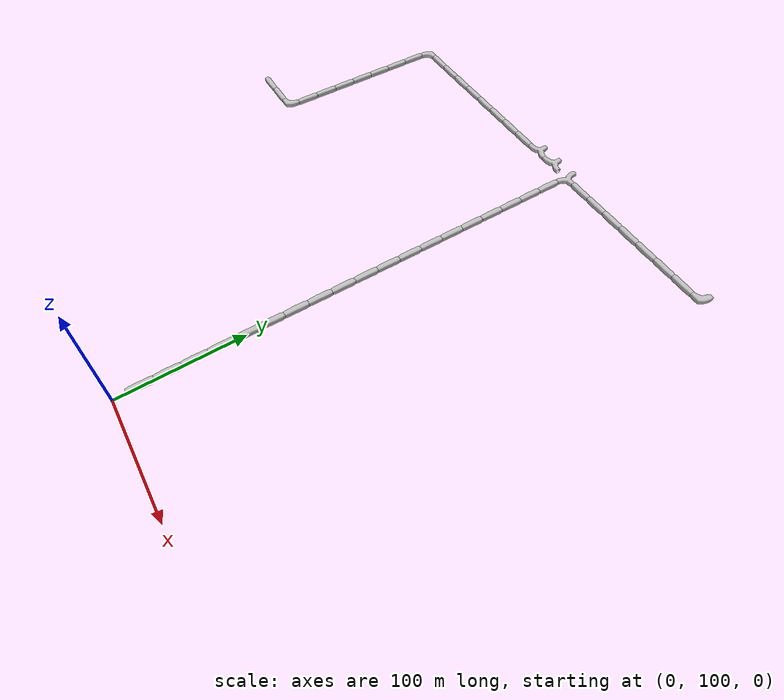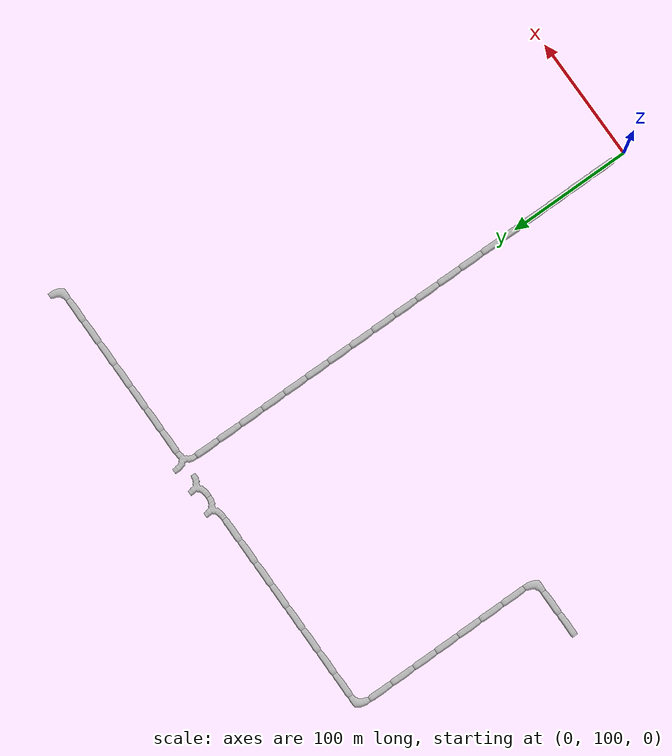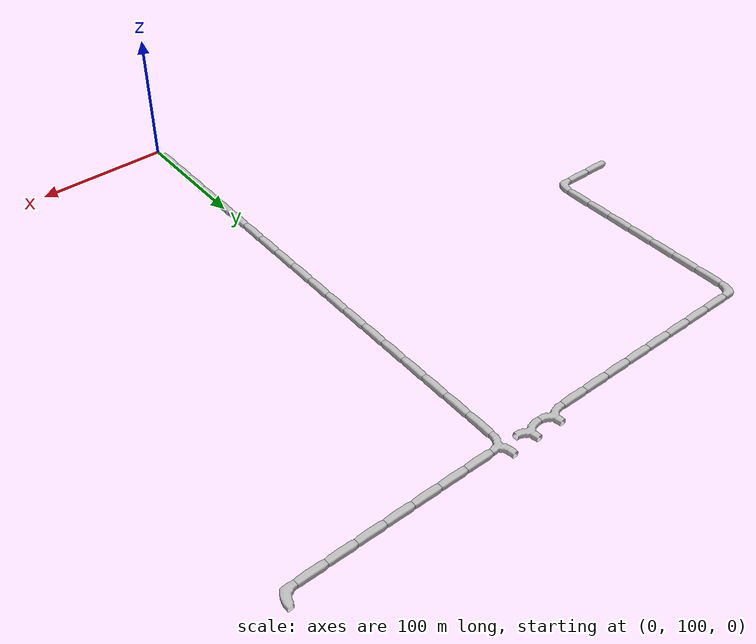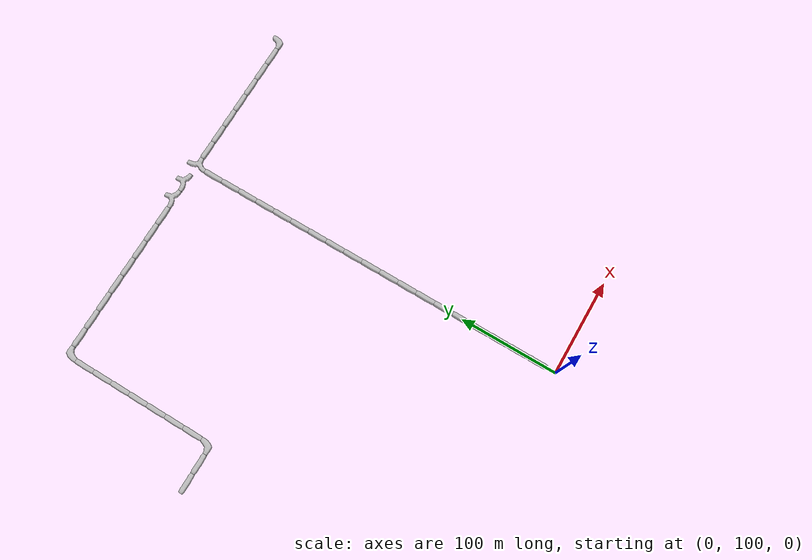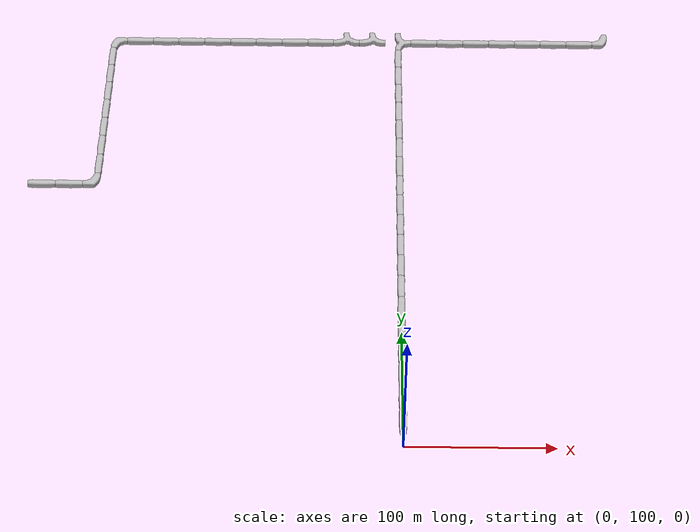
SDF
<sdf version="1.6">
 <world name="cave_4000_4">
  <include>
   <static>true</static>
   <name>cave_0_6</name>
   <pose>0 120 0 0 0 0.0</pose>
   <uri>model://cave_straight_20m</uri>
  </include>
  <include>
   <static>true</static>
   <name>cave_0_7</name>
   <pose>0 140 0 0 0 0.0</pose>
   <uri>model://cave_straight_20m</uri>
  </include>
  <include>
   <static>true</static>
   <name>cave_0_8</name>
   <pose>0 160 0 0 0 0.0</pose>
   <uri>model://cave_straight_20m</uri>
  </include>
  <include>
   <static>true</static>
   <name>cave_0_9</name>
   <pose>0 180 0 0 0 0.0</pose>
   <uri>model://cave_straight_20m</uri>
  </include>
  <include>
   <static>true</static>
   <name>cave_0_10</name>
   <pose>0 200 0 0 0 0.0</pose>
   <uri>model://cave_straight_20m</uri>
  </include>
  <include>
   <static>true</static>
   <name>cave_0_11</name>
   <pose>0 220 0 0 0 0.0</pose>
   <uri>model://cave_straight_20m</uri>
  </include>
  <include>
   <static>true</static>
   <name>cave_0_12</name>
   <pose>0 240 0 0 0 0.0</pose>
   <uri>model://cave_straight_20m</uri>
  </include>
  <include>
   <static>true</static>
   <name>cave_0_13</name>
   <pose>0 260 0 0 0 0.0</pose>
   <uri>model://cave_straight_20m</uri>
  </include>
  <include>
   <static>true</static>
   <name>cave_0_14</name>
   <pose>0 280 0 0 0 0.0</pose>
   <uri>model://cave_straight_20m</uri>
  </include>
  <include>
   <static>true</static>
   <name>cave_0_15</name>
   <pose>0 300 0 0 0 0.0</pose>
   <uri>model://cave_straight_20m</uri>
  </include>
  <include>
   <static>true</static>
   <name>cave_0_16</name>
   <pose>0 320 0 0 0 0.0</pose>
   <uri>model://cave_straight_20m</uri>
  </include>
  <include>
   <static>true</static>
   <name>cave_0_17</name>
   <pose>0 340 0 0 0 0.0</pose>
   <uri>model://cave_straight_20m</uri>
  </include>
  <include>
   <static>true</static>
   <name>cave_0_18</name>
   <pose>0 360 0 0 0 0.0</pose>
   <uri>model://cave_straight_20m</uri>
  </include>
  <include>
   <static>true</static>
   <name>cave_0_19</name>
   <pose>0 380 0 0 0 0.0</pose>
   <uri>model://cave_straight_20m</uri>
  </include>
  <include>
   <static>true</static>
   <name>cave_0_20</name>
   <pose>0 400 0 0 0 0.0</pose>
   <uri>model://cave_straight_20m</uri>
  </include>
  <include>
   <static>true</static>
   <name>cave_0_21</name>
   <pose>0 420 0 0 0 0.0</pose>
   <uri>model://cave_straight_20m</uri>
  </include>
  <include>
   <static>true</static>
   <name>cave_0_22</name>
   <pose>0 440 0 0 0 0.0</pose>
   <uri>model://cave_straight_20m</uri>
  </include>
  <include>
   <static>true</static>
   <name>cave_0_23</name>
   <pose>0 460 0 0 0 0.0</pose>
   <uri>model://cave_straight_20m</uri>
  </include>
  <include>
   <static>true</static>
   <name>cave_0_24</name>
   <pose>0 480 0 0 0 0.0</pose>
   <uri>model://cave_straight_20m</uri>
  </include>
  <include>
   <static>true</static>
   <name>cave_0_25</name>
   <pose>0 500 0 0 0 -1.5707963267948966</pose>
   <uri>model://cave_3way_20m</uri>
  </include>
  <include>
   <static>true</static>
   <name>cave_1_25</name>
   <pose>20 500 0 0 0 1.5707963267948966</pose>
   <uri>model://cave_straight_20m</uri>
  </include>
  <include>
   <static>true</static>
   <name>cave_2_25</name>
   <pose>40 500 0 0 0 1.5707963267948966</pose>
   <uri>model://cave_straight_20m</uri>
  </include>
  <include>
   <static>true</static>
   <name>cave_3_25</name>
   <pose>60 500 0 0 0 1.5707963267948966</pose>
   <uri>model://cave_straight_20m</uri>
  </include>
  <include>
   <static>true</static>
   <name>cave_4_25</name>
   <pose>80 500 0 0 0 1.5707963267948966</pose>
   <uri>model://cave_straight_20m</uri>
  </include>
  <include>
   <static>true</static>
   <name>cave_5_25</name>
   <pose>100 500 0 0 0 1.5707963267948966</pose>
   <uri>model://cave_straight_20m</uri>
  </include>
  <include>
   <static>true</static>
   <name>cave_6_25</name>
   <pose>120 500 0 0 0 1.5707963267948966</pose>
   <uri>model://cave_straight_20m</uri>
  </include>
  <include>
   <static>true</static>
   <name>cave_7_25</name>
   <pose>140 500 0 0 0 1.5707963267948966</pose>
   <uri>model://cave_straight_20m</uri>
  </include>
  <include>
   <static>true</static>
   <name>cave_8_25</name>
   <pose>160 500 0 0 0 1.5707963267948966</pose>
   <uri>model://cave_L_20m</uri>
  </include>
  <include>
   <static>true</static>
   <name>cave_-1_25</name>
   <pose>-20 500 0 0 0 0.0</pose>
   <uri>model://cave_3way_20m</uri>
  </include>
  <include>
   <static>true</static>
   <name>cave_-2_25</name>
   <pose>-40 500 0 0 0 0.0</pose>
   <uri>model://cave_3way_20m</uri>
  </include>
  <include>
   <static>true</static>
   <name>cave_-3_25</name>
   <pose>-60 500 0 0 0 1.5707963267948966</pose>
   <uri>model://cave_straight_20m</uri>
  </include>
  <include>
   <static>true</static>
   <name>cave_-4_25</name>
   <pose>-80 500 0 0 0 1.5707963267948966</pose>
   <uri>model://cave_straight_20m</uri>
  </include>
  <include>
   <static>true</static>
   <name>cave_-5_25</name>
   <pose>-100 500 0 0 0 1.5707963267948966</pose>
   <uri>model://cave_straight_20m</uri>
  </include>
  <include>
   <static>true</static>
   <name>cave_-6_25</name>
   <pose>-120 500 0 0 0 1.5707963267948966</pose>
   <uri>model://cave_straight_20m</uri>
  </include>
  <include>
   <static>true</static>
   <name>cave_-7_25</name>
   <pose>-140 500 0 0 0 1.5707963267948966</pose>
   <uri>model://cave_straight_20m</uri>
  </include>
  <include>
   <static>true</static>
   <name>cave_-8_25</name>
   <pose>-160 500 0 0 0 1.5707963267948966</pose>
   <uri>model://cave_straight_20m</uri>
  </include>
  <include>
   <static>true</static>
   <name>cave_-9_25</name>
   <pose>-180 500 0 0 0 1.5707963267948966</pose>
   <uri>model://cave_straight_20m</uri>
  </include>
  <include>
   <static>true</static>
   <name>cave_-10_25</name>
   <pose>-200 500 0 0 0 1.5707963267948966</pose>
   <uri>model://cave_straight_20m</uri>
  </include>
  <include>
   <static>true</static>
   <name>cave_-11_25</name>
   <pose>-220 500 0 0 0 -1.5707963267948966</pose>
   <uri>model://cave_L_20m</uri>
  </include>
  <include>
   <static>true</static>
   <name>cave_-11_24</name>
   <pose>-220 480 0 0 0 0.0</pose>
   <uri>model://cave_straight_20m</uri>
  </include>
  <include>
   <static>true</static>
   <name>cave_-11_23</name>
   <pose>-220 460 0 0 0 0.0</pose>
   <uri>model://cave_straight_20m</uri>
  </include>
  <include>
   <static>true</static>
   <name>cave_-11_22</name>
   <pose>-220 440 0 0 0 0.0</pose>
   <uri>model://cave_straight_20m</uri>
  </include>
  <include>
   <static>true</static>
   <name>cave_-11_21</name>
   <pose>-220 420 0 0 0 0.0</pose>
   <uri>model://cave_straight_20m</uri>
  </include>
  <include>
   <static>true</static>
   <name>cave_-11_20</name>
   <pose>-220 400 0 0 0 0.0</pose>
   <uri>model://cave_straight_20m</uri>
  </include>
  <include>
   <static>true</static>
   <name>cave_-11_19</name>
   <pose>-220 380 0 0 0 0.0</pose>
   <uri>model://cave_straight_20m</uri>
  </include>
  <include>
   <static>true</static>
   <name>cave_-11_18</name>
   <pose>-220 360 0 0 0 0.0</pose>
   <uri>model://cave_straight_20m</uri>
  </include>
  <include>
   <static>true</static>
   <name>cave_-11_17</name>
   <pose>-220 340 0 0 0 1.5707963267948966</pose>
   <uri>model://cave_L_20m</uri>
  </include>
  <include>
   <static>true</static>
   <name>cave_-12_17</name>
   <pose>-240 340 0 0 0 1.5707963267948966</pose>
   <uri>model://cave_straight_20m</uri>
  </include>
  <include>
   <static>true</static>
   <name>cave_-13_17</name>
   <pose>-260 340 0 0 0 1.5707963267948966</pose>
   <uri>model://cave_straight_20m</uri>
  </include>
 </world>
</sdf>
